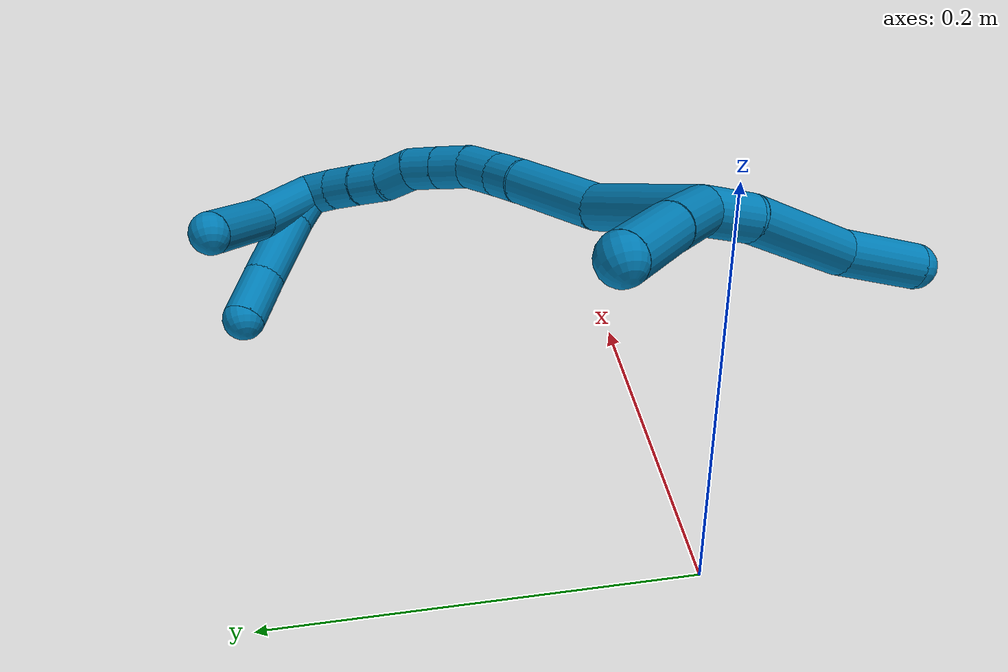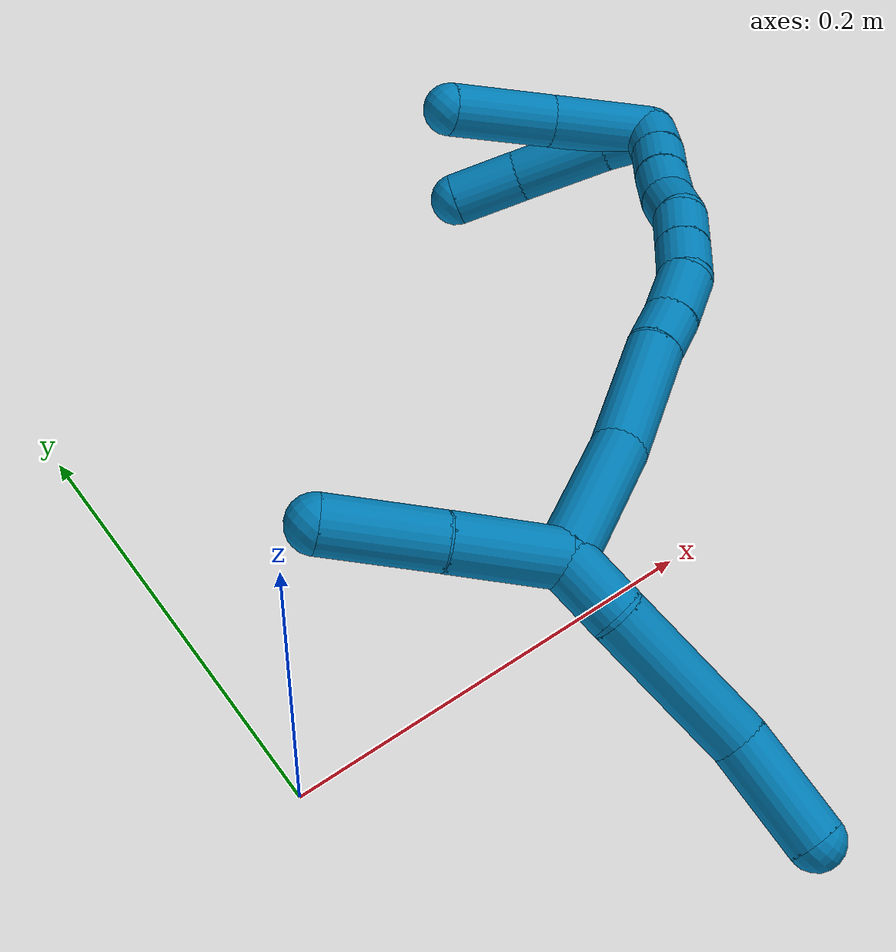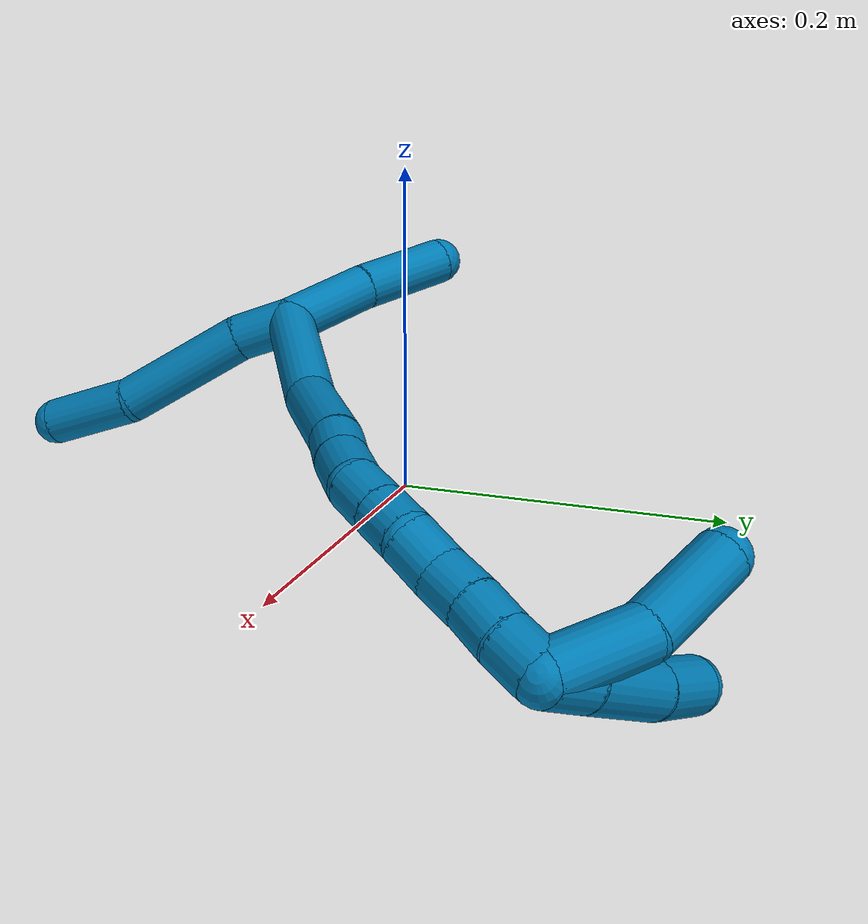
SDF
<sdf version="1.7">
 <world name="default">
  <model name="9">
   <static>0</static>
   <link name="9">
    <collision name="collision-cylinder-e_1_2_8">
     <pose>0.007968 -0.012624 -0.000926 1.64402 0.561814 0.60208</pose>
     <geometry><cylinder><radius>0.0125</radius><length>0.029915</length></cylinder></geometry>
     <surface>
      <friction><ode><mu>1.16</mu><mu2>1.16</mu2><slip1>0</slip1><slip2>0</slip2></ode></friction>
      <contact><ode><kp>1e+06</kp><kd>1</kd><max_vel>0</max_vel><min_depth>0.001</min_depth></ode></contact>
     </surface>
    </collision>
    <visual name="visual-cylinder-e_1_2_8">
     <pose>0.007968 -0.012624 -0.000926 1.64402 0.561814 0.60208</pose>
     <geometry><cylinder><radius>0.0125</radius><length>0.029915</length></cylinder></geometry>
     <material><ambient>0 0.490196 0.709804 1</ambient></material>
    </visual>
    <collision name="collision-cylinder-e_2_8_9">
     <pose>0.04066 -0.0505 -0.004325 1.6684 0.772458 0.843075</pose>
     <geometry><cylinder><radius>0.0125</radius><length>0.070852</length></cylinder></geometry>
     <surface>
      <friction><ode><mu>1.16</mu><mu2>1.16</mu2><slip1>0</slip1><slip2>0</slip2></ode></friction>
      <contact><ode><kp>1e+06</kp><kd>1</kd><max_vel>0</max_vel><min_depth>0.001</min_depth></ode></contact>
     </surface>
    </collision>
    <visual name="visual-cylinder-e_2_8_9">
     <pose>0.04066 -0.0505 -0.004325 1.6684 0.772458 0.843075</pose>
     <geometry><cylinder><radius>0.0125</radius><length>0.070852</length></cylinder></geometry>
     <material><ambient>0 0.490196 0.709804 1</ambient></material>
    </visual>
    <collision name="collision-cylinder-e_3_9_6">
     <pose>0.076844 -0.097165 -0.010807 1.75592 0.484271 0.578373</pose>
     <geometry><cylinder><radius>0.0125</radius><length>0.049233</length></cylinder></geometry>
     <surface>
      <friction><ode><mu>1.16</mu><mu2>1.16</mu2><slip1>0</slip1><slip2>0</slip2></ode></friction>
      <contact><ode><kp>1e+06</kp><kd>1</kd><max_vel>0</max_vel><min_depth>0.001</min_depth></ode></contact>
     </surface>
    </collision>
    <visual name="visual-cylinder-e_3_9_6">
     <pose>0.076844 -0.097165 -0.010807 1.75592 0.484271 0.578373</pose>
     <geometry><cylinder><radius>0.0125</radius><length>0.049233</length></cylinder></geometry>
     <material><ambient>0 0.490196 0.709804 1</ambient></material>
    </visual>
    <collision name="collision-cylinder-e_1_2_10">
     <pose>-0.017369 0.011685 -0.012533 -2.39117 -0.792159 1.63065</pose>
     <geometry><cylinder><radius>0.0125</radius><length>0.048797</length></cylinder></geometry>
     <surface>
      <friction><ode><mu>1.16</mu><mu2>1.16</mu2><slip1>0</slip1><slip2>0</slip2></ode></friction>
      <contact><ode><kp>1e+06</kp><kd>1</kd><max_vel>0</max_vel><min_depth>0.001</min_depth></ode></contact>
     </surface>
    </collision>
    <visual name="visual-cylinder-e_1_2_10">
     <pose>-0.017369 0.011685 -0.012533 -2.39117 -0.792159 1.63065</pose>
     <geometry><cylinder><radius>0.0125</radius><length>0.048797</length></cylinder></geometry>
     <material><ambient>0 0.490196 0.709804 1</ambient></material>
    </visual>
    <collision name="collision-cylinder-e_2_10_5">
     <pose>-0.051327 0.037087 -0.038925 -2.36141 -0.704963 1.45969</pose>
     <geometry><cylinder><radius>0.0125</radius><length>0.051203</length></cylinder></geometry>
     <surface>
      <friction><ode><mu>1.16</mu><mu2>1.16</mu2><slip1>0</slip1><slip2>0</slip2></ode></friction>
      <contact><ode><kp>1e+06</kp><kd>1</kd><max_vel>0</max_vel><min_depth>0.001</min_depth></ode></contact>
     </surface>
    </collision>
    <visual name="visual-cylinder-e_2_10_5">
     <pose>-0.051327 0.037087 -0.038925 -2.36141 -0.704963 1.45969</pose>
     <geometry><cylinder><radius>0.0125</radius><length>0.051203</length></cylinder></geometry>
     <material><ambient>0 0.490196 0.709804 1</ambient></material>
    </visual>
    <collision name="collision-cylinder-e_1_2_11">
     <pose>0.0218 0.021458 0.021371 -0.787425 0.623917 -0.266339</pose>
     <geometry><cylinder><radius>0.0125</radius><length>0.074631</length></cylinder></geometry>
     <surface>
      <friction><ode><mu>1.16</mu><mu2>1.16</mu2><slip1>0</slip1><slip2>0</slip2></ode></friction>
      <contact><ode><kp>1e+06</kp><kd>1</kd><max_vel>0</max_vel><min_depth>0.001</min_depth></ode></contact>
     </surface>
    </collision>
    <visual name="visual-cylinder-e_1_2_11">
     <pose>0.0218 0.021458 0.021371 -0.787425 0.623917 -0.266339</pose>
     <geometry><cylinder><radius>0.0125</radius><length>0.074631</length></cylinder></geometry>
     <material><ambient>0 0.490196 0.709804 1</ambient></material>
    </visual>
    <collision name="collision-cylinder-e_2_11_12">
     <pose>0.053817 0.060039 0.063201 -0.696855 0.365718 -0.134146</pose>
     <geometry><cylinder><radius>0.0125</radius><length>0.057135</length></cylinder></geometry>
     <surface>
      <friction><ode><mu>1.16</mu><mu2>1.16</mu2><slip1>0</slip1><slip2>0</slip2></ode></friction>
      <contact><ode><kp>1e+06</kp><kd>1</kd><max_vel>0</max_vel><min_depth>0.001</min_depth></ode></contact>
     </surface>
    </collision>
    <visual name="visual-cylinder-e_2_11_12">
     <pose>0.053817 0.060039 0.063201 -0.696855 0.365718 -0.134146</pose>
     <geometry><cylinder><radius>0.0125</radius><length>0.057135</length></cylinder></geometry>
     <material><ambient>0 0.490196 0.709804 1</ambient></material>
    </visual>
    <collision name="collision-cylinder-e_3_12_13">
     <pose>0.068796 0.082539 0.09082 -0.644204 0.488771 -0.166059</pose>
     <geometry><cylinder><radius>0.0125</radius><length>0.020285</length></cylinder></geometry>
     <surface>
      <friction><ode><mu>1.16</mu><mu2>1.16</mu2><slip1>0</slip1><slip2>0</slip2></ode></friction>
      <contact><ode><kp>1e+06</kp><kd>1</kd><max_vel>0</max_vel><min_depth>0.001</min_depth></ode></contact>
     </surface>
    </collision>
    <visual name="visual-cylinder-e_3_12_13">
     <pose>0.068796 0.082539 0.09082 -0.644204 0.488771 -0.166059</pose>
     <geometry><cylinder><radius>0.0125</radius><length>0.020285</length></cylinder></geometry>
     <material><ambient>0 0.490196 0.709804 1</ambient></material>
    </visual>
    <collision name="collision-cylinder-e_4_13_14">
     <pose>0.078597 0.095531 0.106694 -0.718153 0.410677 -0.156034</pose>
     <geometry><cylinder><radius>0.0125</radius><length>0.025242</length></cylinder></geometry>
     <surface>
      <friction><ode><mu>1.16</mu><mu2>1.16</mu2><slip1>0</slip1><slip2>0</slip2></ode></friction>
      <contact><ode><kp>1e+06</kp><kd>1</kd><max_vel>0</max_vel><min_depth>0.001</min_depth></ode></contact>
     </surface>
    </collision>
    <visual name="visual-cylinder-e_4_13_14">
     <pose>0.078597 0.095531 0.106694 -0.718153 0.410677 -0.156034</pose>
     <geometry><cylinder><radius>0.0125</radius><length>0.025242</length></cylinder></geometry>
     <material><ambient>0 0.490196 0.709804 1</ambient></material>
    </visual>
    <collision name="collision-cylinder-e_5_14_15">
     <pose>0.087482 0.11184 0.120353 -1.0537 0.367075 -0.215123</pose>
     <geometry><cylinder><radius>0.0125</radius><length>0.021433</length></cylinder></geometry>
     <surface>
      <friction><ode><mu>1.16</mu><mu2>1.16</mu2><slip1>0</slip1><slip2>0</slip2></ode></friction>
      <contact><ode><kp>1e+06</kp><kd>1</kd><max_vel>0</max_vel><min_depth>0.001</min_depth></ode></contact>
     </surface>
    </collision>
    <visual name="visual-cylinder-e_5_14_15">
     <pose>0.087482 0.11184 0.120353 -1.0537 0.367075 -0.215123</pose>
     <geometry><cylinder><radius>0.0125</radius><length>0.021433</length></cylinder></geometry>
     <material><ambient>0 0.490196 0.709804 1</ambient></material>
    </visual>
    <collision name="collision-cylinder-e_6_15_16">
     <pose>0.095118 0.128962 0.129959 -1.06551 0.37495 -0.22278</pose>
     <geometry><cylinder><radius>0.0125</radius><length>0.020699</length></cylinder></geometry>
     <surface>
      <friction><ode><mu>1.16</mu><mu2>1.16</mu2><slip1>0</slip1><slip2>0</slip2></ode></friction>
      <contact><ode><kp>1e+06</kp><kd>1</kd><max_vel>0</max_vel><min_depth>0.001</min_depth></ode></contact>
     </surface>
    </collision>
    <visual name="visual-cylinder-e_6_15_16">
     <pose>0.095118 0.128962 0.129959 -1.06551 0.37495 -0.22278</pose>
     <geometry><cylinder><radius>0.0125</radius><length>0.020699</length></cylinder></geometry>
     <material><ambient>0 0.490196 0.709804 1</ambient></material>
    </visual>
    <collision name="collision-cylinder-e_7_16_17">
     <pose>0.103563 0.146405 0.136201 -1.39726 0.470453 -0.3973</pose>
     <geometry><cylinder><radius>0.0125</radius><length>0.020538</length></cylinder></geometry>
     <surface>
      <friction><ode><mu>1.16</mu><mu2>1.16</mu2><slip1>0</slip1><slip2>0</slip2></ode></friction>
      <contact><ode><kp>1e+06</kp><kd>1</kd><max_vel>0</max_vel><min_depth>0.001</min_depth></ode></contact>
     </surface>
    </collision>
    <visual name="visual-cylinder-e_7_16_17">
     <pose>0.103563 0.146405 0.136201 -1.39726 0.470453 -0.3973</pose>
     <geometry><cylinder><radius>0.0125</radius><length>0.020538</length></cylinder></geometry>
     <material><ambient>0 0.490196 0.709804 1</ambient></material>
    </visual>
    <collision name="collision-cylinder-e_8_17_18">
     <pose>0.111885 0.164069 0.141235 -1.19093 0.375159 -0.25579</pose>
     <geometry><cylinder><radius>0.0125</radius><length>0.020016</length></cylinder></geometry>
     <surface>
      <friction><ode><mu>1.16</mu><mu2>1.16</mu2><slip1>0</slip1><slip2>0</slip2></ode></friction>
      <contact><ode><kp>1e+06</kp><kd>1</kd><max_vel>0</max_vel><min_depth>0.001</min_depth></ode></contact>
     </surface>
    </collision>
    <visual name="visual-cylinder-e_8_17_18">
     <pose>0.111885 0.164069 0.141235 -1.19093 0.375159 -0.25579</pose>
     <geometry><cylinder><radius>0.0125</radius><length>0.020016</length></cylinder></geometry>
     <material><ambient>0 0.490196 0.709804 1</ambient></material>
    </visual>
    <collision name="collision-cylinder-e_9_18_19">
     <pose>0.11983 0.180971 0.148394 -1.1488 0.441633 -0.288542</pose>
     <geometry><cylinder><radius>0.0125</radius><length>0.020017</length></cylinder></geometry>
     <surface>
      <friction><ode><mu>1.16</mu><mu2>1.16</mu2><slip1>0</slip1><slip2>0</slip2></ode></friction>
      <contact><ode><kp>1e+06</kp><kd>1</kd><max_vel>0</max_vel><min_depth>0.001</min_depth></ode></contact>
     </surface>
    </collision>
    <visual name="visual-cylinder-e_9_18_19">
     <pose>0.11983 0.180971 0.148394 -1.1488 0.441633 -0.288542</pose>
     <geometry><cylinder><radius>0.0125</radius><length>0.020017</length></cylinder></geometry>
     <material><ambient>0 0.490196 0.709804 1</ambient></material>
    </visual>
    <collision name="collision-cylinder-e_10_19_1">
     <pose>0.127876 0.198032 0.15498 -1.25466 0.386307 -0.281744</pose>
     <geometry><cylinder><radius>0.0125</radius><length>0.020004</length></cylinder></geometry>
     <surface>
      <friction><ode><mu>1.16</mu><mu2>1.16</mu2><slip1>0</slip1><slip2>0</slip2></ode></friction>
      <contact><ode><kp>1e+06</kp><kd>1</kd><max_vel>0</max_vel><min_depth>0.001</min_depth></ode></contact>
     </surface>
    </collision>
    <visual name="visual-cylinder-e_10_19_1">
     <pose>0.127876 0.198032 0.15498 -1.25466 0.386307 -0.281744</pose>
     <geometry><cylinder><radius>0.0125</radius><length>0.020004</length></cylinder></geometry>
     <material><ambient>0 0.490196 0.709804 1</ambient></material>
    </visual>
    <collision name="collision-cylinder-e_1_1_20">
     <pose>0.118204 0.220975 0.143846 -2.3518 -0.593876 1.26656</pose>
     <geometry><cylinder><radius>0.0125</radius><length>0.048039</length></cylinder></geometry>
     <surface>
      <friction><ode><mu>1.16</mu><mu2>1.16</mu2><slip1>0</slip1><slip2>0</slip2></ode></friction>
      <contact><ode><kp>1e+06</kp><kd>1</kd><max_vel>0</max_vel><min_depth>0.001</min_depth></ode></contact>
     </surface>
    </collision>
    <visual name="visual-cylinder-e_1_1_20">
     <pose>0.118204 0.220975 0.143846 -2.3518 -0.593876 1.26656</pose>
     <geometry><cylinder><radius>0.0125</radius><length>0.048039</length></cylinder></geometry>
     <material><ambient>0 0.490196 0.709804 1</ambient></material>
    </visual>
    <collision name="collision-cylinder-e_2_20_4">
     <pose>0.085129 0.244243 0.115475 -2.57519 -0.856771 2.00684</pose>
     <geometry><cylinder><radius>0.0125</radius><length>0.051961</length></cylinder></geometry>
     <surface>
      <friction><ode><mu>1.16</mu><mu2>1.16</mu2><slip1>0</slip1><slip2>0</slip2></ode></friction>
      <contact><ode><kp>1e+06</kp><kd>1</kd><max_vel>0</max_vel><min_depth>0.001</min_depth></ode></contact>
     </surface>
    </collision>
    <visual name="visual-cylinder-e_2_20_4">
     <pose>0.085129 0.244243 0.115475 -2.57519 -0.856771 2.00684</pose>
     <geometry><cylinder><radius>0.0125</radius><length>0.051961</length></cylinder></geometry>
     <material><ambient>0 0.490196 0.709804 1</ambient></material>
    </visual>
    <collision name="collision-cylinder-e_1_1_21">
     <pose>0.130259 0.213196 0.148699 -2.53487 -0.123608 0.390354</pose>
     <geometry><cylinder><radius>0.0125</radius><length>0.022475</length></cylinder></geometry>
     <surface>
      <friction><ode><mu>1.16</mu><mu2>1.16</mu2><slip1>0</slip1><slip2>0</slip2></ode></friction>
      <contact><ode><kp>1e+06</kp><kd>1</kd><max_vel>0</max_vel><min_depth>0.001</min_depth></ode></contact>
     </surface>
    </collision>
    <visual name="visual-cylinder-e_1_1_21">
     <pose>0.130259 0.213196 0.148699 -2.53487 -0.123608 0.390354</pose>
     <geometry><cylinder><radius>0.0125</radius><length>0.022475</length></cylinder></geometry>
     <material><ambient>0 0.490196 0.709804 1</ambient></material>
    </visual>
    <collision name="collision-cylinder-e_2_21_22">
     <pose>0.126295 0.230412 0.120265 -2.62853 -0.11606 0.435912</pose>
     <geometry><cylinder><radius>0.0125</radius><length>0.044541</length></cylinder></geometry>
     <surface>
      <friction><ode><mu>1.16</mu><mu2>1.16</mu2><slip1>0</slip1><slip2>0</slip2></ode></friction>
      <contact><ode><kp>1e+06</kp><kd>1</kd><max_vel>0</max_vel><min_depth>0.001</min_depth></ode></contact>
     </surface>
    </collision>
    <visual name="visual-cylinder-e_2_21_22">
     <pose>0.126295 0.230412 0.120265 -2.62853 -0.11606 0.435912</pose>
     <geometry><cylinder><radius>0.0125</radius><length>0.044541</length></cylinder></geometry>
     <material><ambient>0 0.490196 0.709804 1</ambient></material>
    </visual>
    <collision name="collision-cylinder-e_3_22_3">
     <pose>0.120099 0.247985 0.08637 -2.71112 -0.221067 0.939508</pose>
     <geometry><cylinder><radius>0.0125</radius><length>0.032985</length></cylinder></geometry>
     <surface>
      <friction><ode><mu>1.16</mu><mu2>1.16</mu2><slip1>0</slip1><slip2>0</slip2></ode></friction>
      <contact><ode><kp>1e+06</kp><kd>1</kd><max_vel>0</max_vel><min_depth>0.001</min_depth></ode></contact>
     </surface>
    </collision>
    <visual name="visual-cylinder-e_3_22_3">
     <pose>0.120099 0.247985 0.08637 -2.71112 -0.221067 0.939508</pose>
     <geometry><cylinder><radius>0.0125</radius><length>0.032985</length></cylinder></geometry>
     <material><ambient>0 0.490196 0.709804 1</ambient></material>
    </visual>
    <collision name="collision-sphere-3">
     <pose>0.116483 0.254699 0.071747 0 -0 0</pose>
     <geometry><sphere><radius>0.0125</radius></sphere></geometry>
     <surface>
      <friction><ode><mu>1.16</mu><mu2>1.16</mu2><slip1>0</slip1><slip2>0</slip2></ode></friction>
      <contact><ode><kp>1e+06</kp><kd>1</kd><max_vel>0</max_vel><min_depth>0.001</min_depth></ode></contact>
     </surface>
    </collision>
    <visual name="visual-sphere-3">
     <pose>0.116483 0.254699 0.071747 0 -0 0</pose>
     <geometry><sphere><radius>0.0125</radius></sphere></geometry>
     <material><ambient>0 0.490196 0.709804 1</ambient></material>
    </visual>
    <collision name="collision-sphere-22">
     <pose>0.123716 0.24127 0.100993 0 -0 0</pose>
     <geometry><sphere><radius>0.0125</radius></sphere></geometry>
     <surface>
      <friction><ode><mu>1.16</mu><mu2>1.16</mu2><slip1>0</slip1><slip2>0</slip2></ode></friction>
      <contact><ode><kp>1e+06</kp><kd>1</kd><max_vel>0</max_vel><min_depth>0.001</min_depth></ode></contact>
     </surface>
    </collision>
    <visual name="visual-sphere-22">
     <pose>0.123716 0.24127 0.100993 0 -0 0</pose>
     <geometry><sphere><radius>0.0125</radius></sphere></geometry>
     <material><ambient>0 0.490196 0.709804 1</ambient></material>
    </visual>
    <collision name="collision-sphere-21">
     <pose>0.128873 0.219554 0.139538 0 -0 0</pose>
     <geometry><sphere><radius>0.0125</radius></sphere></geometry>
     <surface>
      <friction><ode><mu>1.16</mu><mu2>1.16</mu2><slip1>0</slip1><slip2>0</slip2></ode></friction>
      <contact><ode><kp>1e+06</kp><kd>1</kd><max_vel>0</max_vel><min_depth>0.001</min_depth></ode></contact>
     </surface>
    </collision>
    <visual name="visual-sphere-21">
     <pose>0.128873 0.219554 0.139538 0 -0 0</pose>
     <geometry><sphere><radius>0.0125</radius></sphere></geometry>
     <material><ambient>0 0.490196 0.709804 1</ambient></material>
    </visual>
    <collision name="collision-sphere-4">
     <pose>0.065494 0.253373 0.101117 0 -0 0</pose>
     <geometry><sphere><radius>0.0125</radius></sphere></geometry>
     <surface>
      <friction><ode><mu>1.16</mu><mu2>1.16</mu2><slip1>0</slip1><slip2>0</slip2></ode></friction>
      <contact><ode><kp>1e+06</kp><kd>1</kd><max_vel>0</max_vel><min_depth>0.001</min_depth></ode></contact>
     </surface>
    </collision>
    <visual name="visual-sphere-4">
     <pose>0.065494 0.253373 0.101117 0 -0 0</pose>
     <geometry><sphere><radius>0.0125</radius></sphere></geometry>
     <material><ambient>0 0.490196 0.709804 1</ambient></material>
    </visual>
    <collision name="collision-sphere-20">
     <pose>0.104763 0.235113 0.129832 0 -0 0</pose>
     <geometry><sphere><radius>0.0125</radius></sphere></geometry>
     <surface>
      <friction><ode><mu>1.16</mu><mu2>1.16</mu2><slip1>0</slip1><slip2>0</slip2></ode></friction>
      <contact><ode><kp>1e+06</kp><kd>1</kd><max_vel>0</max_vel><min_depth>0.001</min_depth></ode></contact>
     </surface>
    </collision>
    <visual name="visual-sphere-20">
     <pose>0.104763 0.235113 0.129832 0 -0 0</pose>
     <geometry><sphere><radius>0.0125</radius></sphere></geometry>
     <material><ambient>0 0.490196 0.709804 1</ambient></material>
    </visual>
    <collision name="collision-sphere-5">
     <pose>-0.067917 0.050802 -0.052785 0 -0 0</pose>
     <geometry><sphere><radius>0.0125</radius></sphere></geometry>
     <surface>
      <friction><ode><mu>1.16</mu><mu2>1.16</mu2><slip1>0</slip1><slip2>0</slip2></ode></friction>
      <contact><ode><kp>1e+06</kp><kd>1</kd><max_vel>0</max_vel><min_depth>0.001</min_depth></ode></contact>
     </surface>
    </collision>
    <visual name="visual-sphere-5">
     <pose>-0.067917 0.050802 -0.052785 0 -0 0</pose>
     <geometry><sphere><radius>0.0125</radius></sphere></geometry>
     <material><ambient>0 0.490196 0.709804 1</ambient></material>
    </visual>
    <collision name="collision-sphere-10">
     <pose>-0.034737 0.023371 -0.025066 0 -0 0</pose>
     <geometry><sphere><radius>0.0125</radius></sphere></geometry>
     <surface>
      <friction><ode><mu>1.16</mu><mu2>1.16</mu2><slip1>0</slip1><slip2>0</slip2></ode></friction>
      <contact><ode><kp>1e+06</kp><kd>1</kd><max_vel>0</max_vel><min_depth>0.001</min_depth></ode></contact>
     </surface>
    </collision>
    <visual name="visual-sphere-10">
     <pose>-0.034737 0.023371 -0.025066 0 -0 0</pose>
     <geometry><sphere><radius>0.0125</radius></sphere></geometry>
     <material><ambient>0 0.490196 0.709804 1</ambient></material>
    </visual>
    <collision name="collision-sphere-6">
     <pose>0.088305 -0.118579 -0.014818 0 -0 0</pose>
     <geometry><sphere><radius>0.0125</radius></sphere></geometry>
     <surface>
      <friction><ode><mu>1.16</mu><mu2>1.16</mu2><slip1>0</slip1><slip2>0</slip2></ode></friction>
      <contact><ode><kp>1e+06</kp><kd>1</kd><max_vel>0</max_vel><min_depth>0.001</min_depth></ode></contact>
     </surface>
    </collision>
    <visual name="visual-sphere-6">
     <pose>0.088305 -0.118579 -0.014818 0 -0 0</pose>
     <geometry><sphere><radius>0.0125</radius></sphere></geometry>
     <material><ambient>0 0.490196 0.709804 1</ambient></material>
    </visual>
    <collision name="collision-sphere-9">
     <pose>0.065384 -0.075751 -0.006797 0 -0 0</pose>
     <geometry><sphere><radius>0.0125</radius></sphere></geometry>
     <surface>
      <friction><ode><mu>1.16</mu><mu2>1.16</mu2><slip1>0</slip1><slip2>0</slip2></ode></friction>
      <contact><ode><kp>1e+06</kp><kd>1</kd><max_vel>0</max_vel><min_depth>0.001</min_depth></ode></contact>
     </surface>
    </collision>
    <visual name="visual-sphere-9">
     <pose>0.065384 -0.075751 -0.006797 0 -0 0</pose>
     <geometry><sphere><radius>0.0125</radius></sphere></geometry>
     <material><ambient>0 0.490196 0.709804 1</ambient></material>
    </visual>
    <collision name="collision-sphere-2">
     <geometry><sphere><radius>0.0125</radius></sphere></geometry>
     <surface>
      <friction><ode><mu>1.16</mu><mu2>1.16</mu2><slip1>0</slip1><slip2>0</slip2></ode></friction>
      <contact><ode><kp>1e+06</kp><kd>1</kd><max_vel>0</max_vel><min_depth>0.001</min_depth></ode></contact>
     </surface>
    </collision>
    <visual name="visual-sphere-2">
     <geometry><sphere><radius>0.0125</radius></sphere></geometry>
     <material><ambient>0 0.490196 0.709804 1</ambient></material>
    </visual>
    <collision name="collision-sphere-19">
     <pose>0.124108 0.189226 0.1521 0 -0 0</pose>
     <geometry><sphere><radius>0.0125</radius></sphere></geometry>
     <surface>
      <friction><ode><mu>1.16</mu><mu2>1.16</mu2><slip1>0</slip1><slip2>0</slip2></ode></friction>
      <contact><ode><kp>1e+06</kp><kd>1</kd><max_vel>0</max_vel><min_depth>0.001</min_depth></ode></contact>
     </surface>
    </collision>
    <visual name="visual-sphere-19">
     <pose>0.124108 0.189226 0.1521 0 -0 0</pose>
     <geometry><sphere><radius>0.0125</radius></sphere></geometry>
     <material><ambient>0 0.490196 0.709804 1</ambient></material>
    </visual>
    <collision name="collision-sphere-8">
     <pose>0.015936 -0.025249 -0.001852 0 -0 0</pose>
     <geometry><sphere><radius>0.0125</radius></sphere></geometry>
     <surface>
      <friction><ode><mu>1.16</mu><mu2>1.16</mu2><slip1>0</slip1><slip2>0</slip2></ode></friction>
      <contact><ode><kp>1e+06</kp><kd>1</kd><max_vel>0</max_vel><min_depth>0.001</min_depth></ode></contact>
     </surface>
    </collision>
    <visual name="visual-sphere-8">
     <pose>0.015936 -0.025249 -0.001852 0 -0 0</pose>
     <geometry><sphere><radius>0.0125</radius></sphere></geometry>
     <material><ambient>0 0.490196 0.709804 1</ambient></material>
    </visual>
    <collision name="collision-sphere-11">
     <pose>0.043601 0.042916 0.042743 0 -0 0</pose>
     <geometry><sphere><radius>0.0125</radius></sphere></geometry>
     <surface>
      <friction><ode><mu>1.16</mu><mu2>1.16</mu2><slip1>0</slip1><slip2>0</slip2></ode></friction>
      <contact><ode><kp>1e+06</kp><kd>1</kd><max_vel>0</max_vel><min_depth>0.001</min_depth></ode></contact>
     </surface>
    </collision>
    <visual name="visual-sphere-11">
     <pose>0.043601 0.042916 0.042743 0 -0 0</pose>
     <geometry><sphere><radius>0.0125</radius></sphere></geometry>
     <material><ambient>0 0.490196 0.709804 1</ambient></material>
    </visual>
    <collision name="collision-sphere-12">
     <pose>0.064034 0.077161 0.08366 0 -0 0</pose>
     <geometry><sphere><radius>0.0125</radius></sphere></geometry>
     <surface>
      <friction><ode><mu>1.16</mu><mu2>1.16</mu2><slip1>0</slip1><slip2>0</slip2></ode></friction>
      <contact><ode><kp>1e+06</kp><kd>1</kd><max_vel>0</max_vel><min_depth>0.001</min_depth></ode></contact>
     </surface>
    </collision>
    <visual name="visual-sphere-12">
     <pose>0.064034 0.077161 0.08366 0 -0 0</pose>
     <geometry><sphere><radius>0.0125</radius></sphere></geometry>
     <material><ambient>0 0.490196 0.709804 1</ambient></material>
    </visual>
    <collision name="collision-sphere-13">
     <pose>0.073558 0.087917 0.097981 0 -0 0</pose>
     <geometry><sphere><radius>0.0125</radius></sphere></geometry>
     <surface>
      <friction><ode><mu>1.16</mu><mu2>1.16</mu2><slip1>0</slip1><slip2>0</slip2></ode></friction>
      <contact><ode><kp>1e+06</kp><kd>1</kd><max_vel>0</max_vel><min_depth>0.001</min_depth></ode></contact>
     </surface>
    </collision>
    <visual name="visual-sphere-13">
     <pose>0.073558 0.087917 0.097981 0 -0 0</pose>
     <geometry><sphere><radius>0.0125</radius></sphere></geometry>
     <material><ambient>0 0.490196 0.709804 1</ambient></material>
    </visual>
    <collision name="collision-sphere-14">
     <pose>0.083636 0.103145 0.115408 0 -0 0</pose>
     <geometry><sphere><radius>0.0125</radius></sphere></geometry>
     <surface>
      <friction><ode><mu>1.16</mu><mu2>1.16</mu2><slip1>0</slip1><slip2>0</slip2></ode></friction>
      <contact><ode><kp>1e+06</kp><kd>1</kd><max_vel>0</max_vel><min_depth>0.001</min_depth></ode></contact>
     </surface>
    </collision>
    <visual name="visual-sphere-14">
     <pose>0.083636 0.103145 0.115408 0 -0 0</pose>
     <geometry><sphere><radius>0.0125</radius></sphere></geometry>
     <material><ambient>0 0.490196 0.709804 1</ambient></material>
    </visual>
    <collision name="collision-sphere-15">
     <pose>0.091328 0.120535 0.125297 0 -0 0</pose>
     <geometry><sphere><radius>0.0125</radius></sphere></geometry>
     <surface>
      <friction><ode><mu>1.16</mu><mu2>1.16</mu2><slip1>0</slip1><slip2>0</slip2></ode></friction>
      <contact><ode><kp>1e+06</kp><kd>1</kd><max_vel>0</max_vel><min_depth>0.001</min_depth></ode></contact>
     </surface>
    </collision>
    <visual name="visual-sphere-15">
     <pose>0.091328 0.120535 0.125297 0 -0 0</pose>
     <geometry><sphere><radius>0.0125</radius></sphere></geometry>
     <material><ambient>0 0.490196 0.709804 1</ambient></material>
    </visual>
    <collision name="collision-sphere-16">
     <pose>0.098908 0.137389 0.134621 0 -0 0</pose>
     <geometry><sphere><radius>0.0125</radius></sphere></geometry>
     <surface>
      <friction><ode><mu>1.16</mu><mu2>1.16</mu2><slip1>0</slip1><slip2>0</slip2></ode></friction>
      <contact><ode><kp>1e+06</kp><kd>1</kd><max_vel>0</max_vel><min_depth>0.001</min_depth></ode></contact>
     </surface>
    </collision>
    <visual name="visual-sphere-16">
     <pose>0.098908 0.137389 0.134621 0 -0 0</pose>
     <geometry><sphere><radius>0.0125</radius></sphere></geometry>
     <material><ambient>0 0.490196 0.709804 1</ambient></material>
    </visual>
    <collision name="collision-sphere-17">
     <pose>0.108218 0.155421 0.137782 0 -0 0</pose>
     <geometry><sphere><radius>0.0125</radius></sphere></geometry>
     <surface>
      <friction><ode><mu>1.16</mu><mu2>1.16</mu2><slip1>0</slip1><slip2>0</slip2></ode></friction>
      <contact><ode><kp>1e+06</kp><kd>1</kd><max_vel>0</max_vel><min_depth>0.001</min_depth></ode></contact>
     </surface>
    </collision>
    <visual name="visual-sphere-17">
     <pose>0.108218 0.155421 0.137782 0 -0 0</pose>
     <geometry><sphere><radius>0.0125</radius></sphere></geometry>
     <material><ambient>0 0.490196 0.709804 1</ambient></material>
    </visual>
    <collision name="collision-sphere-18">
     <pose>0.115552 0.172717 0.144688 0 -0 0</pose>
     <geometry><sphere><radius>0.0125</radius></sphere></geometry>
     <surface>
      <friction><ode><mu>1.16</mu><mu2>1.16</mu2><slip1>0</slip1><slip2>0</slip2></ode></friction>
      <contact><ode><kp>1e+06</kp><kd>1</kd><max_vel>0</max_vel><min_depth>0.001</min_depth></ode></contact>
     </surface>
    </collision>
    <visual name="visual-sphere-18">
     <pose>0.115552 0.172717 0.144688 0 -0 0</pose>
     <geometry><sphere><radius>0.0125</radius></sphere></geometry>
     <material><ambient>0 0.490196 0.709804 1</ambient></material>
    </visual>
    <collision name="collision-sphere-1">
     <pose>0.131644 0.206837 0.15786 0 -0 0</pose>
     <geometry><sphere><radius>0.0125</radius></sphere></geometry>
     <surface>
      <friction><ode><mu>1.16</mu><mu2>1.16</mu2><slip1>0</slip1><slip2>0</slip2></ode></friction>
      <contact><ode><kp>1e+06</kp><kd>1</kd><max_vel>0</max_vel><min_depth>0.001</min_depth></ode></contact>
     </surface>
    </collision>
    <visual name="visual-sphere-1">
     <pose>0.131644 0.206837 0.15786 0 -0 0</pose>
     <geometry><sphere><radius>0.0125</radius></sphere></geometry>
     <material><ambient>0 0.490196 0.709804 1</ambient></material>
    </visual>
    <inertial>
     <pose>0.063055 0.091105 0.063591 0 -0 0</pose>
     <mass>0.75</mass>
     <inertia>
      <ixx>0.000156</ixx>
      <ixy>0</ixy>
      <ixz>0</ixz>
      <iyy>0.000153</iyy>
      <iyz>0</iyz>
      <izz>-6.9e-05</izz>
     </inertia>
    </inertial>
   </link>
   <pose>0.114243 -0.023153 0.125999 -0.378877 1.04297 -0.336724</pose>
  </model>
 </world>
</sdf>
